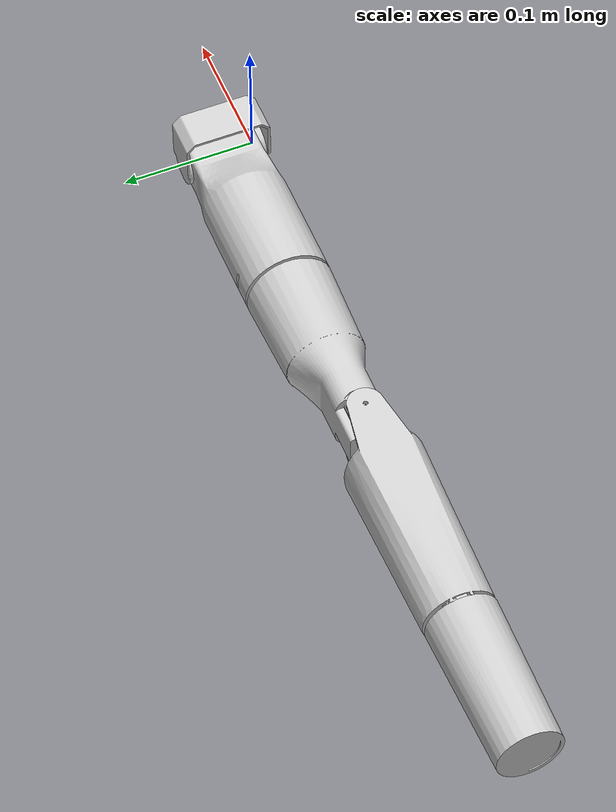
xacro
<?xml version="1.0"?>
   <robot xmlns:xacro="http://ros.org/wiki/xacro" name="left_hand">
   <xacro:property name="damping_value" value="20" />
  <xacro:property name="friction_value" value="0.01" />

     <link name="base_link">
       <visual>
          <geometry>
            <mesh filename="package://anya_v2/meshes/c5.dae" scale="0.001 0.001 0.001"/>
          </geometry>
          <origin xyz="0.0 0.0 0.0" rpy="0 0 0"/>
       </visual>
       <collision>
         <geometry>
            <mesh filename="package://anya_v2/meshes/c5.stl" scale="0.001 0.001 0.001"/>
         </geometry>
       </collision>
       <inertial>
         <mass value="0.016"/>
         <inertia ixx="0.0" ixy="0.0" ixz="0.0" iyy="0.0" iyz="0.0" izz="0.0"/>
       </inertial>
     </link>
     <link name="c4_link">
       <visual>
        <geometry>
          <mesh filename="package://anya_v2/meshes/c4.dae" scale="0.001 0.001 0.001"/>
        </geometry>
        <origin xyz="0.0 -0.005 0.0" rpy="0.0 0.0 0.0"/>
       </visual>
       <collision>
         <geometry>
            <mesh filename="package://anya_v2/meshes/c4.stl" scale="0.001 0.001 0.001"/>
         </geometry>
       </collision>
       <inertial>
         <mass value="0.237"/>
         <inertia ixx="0.0" ixy="0.0" ixz="0.0" iyy="0.0" iyz="0.0" izz="0.0"/>
       </inertial>
     </link>
     <joint name="first_joint" type="revolute">
       <parent link="base_link"/>
       <child link="c4_link"/>
       <axis xyz="0 1 0"/>
       <limit lower="-3.14159" upper="3.14159" velocity="50.0" effort="1000.0"/>
       <dynamics damping="${damping_value}" friction="${friction_value}"/>
       <origin xyz="0 -0.0 0" rpy="0 0 0"/>
     </joint>
      <link name="c3_link">
       <visual>
        <geometry>
          <mesh filename="package://anya_v2/meshes/c3.dae" scale="0.001 0.001 0.001"/>
        </geometry>
        <origin xyz="-0 0 0.0" rpy="0 0 0.0"/>
       </visual>
       <collision>
         <geometry>
            <mesh filename="package://anya_v2/meshes/c3.stl" scale="0.001 0.001 0.001"/>
         </geometry>
       </collision>
       <inertial>
         <mass value="0.131"/>
         <inertia ixx="0.0" ixy="0.0" ixz="0.0" iyy="0.0" iyz="0.0" izz="0.0"/>
       </inertial>
     </link>
     <joint name="second_joint" type="revolute">
       <parent link="c4_link"/>
       <child link="c3_link"/>
       <axis xyz="1 0 0"/>
       <limit lower="-3.14159" upper="3.14159" velocity="50.0" effort="1000.0"/>
       <origin xyz="-0.130 0.025 0.0" rpy="0 0 0"/>
     </joint>
     <link name="c2_link">
       <visual>
        <geometry>
          <mesh filename="package://anya_v2/meshes/c2.dae" scale="0.001 0.001 0.001"/>
        </geometry>
        <origin xyz="0 0 0.0" rpy="0 0 0.0"/>
       </visual>
       <collision>
         <geometry>
            <mesh filename="package://anya_v2/meshes/c2.stl" scale="0.001 0.001 0.001"/>
         </geometry>
       </collision>
       <inertial>
         <mass value="0.146"/>
         <inertia ixx="0.0" ixy="0.0" ixz="0.0" iyy="0.0" iyz="0.0" izz="0.0"/>
       </inertial>
     </link>
     <joint name="third_joint" type="revolute">
       <parent link="c3_link"/>
       <child link="c2_link"/>
       <axis xyz="0 0 1"/>
       <limit lower="-3.14159" upper="3.14159" velocity="50.0" effort="1000.0"/>
       <dynamics damping="${damping_value}" friction="${friction_value}"/>
       <origin xyz="-0.13950 -0.004 -0.02250" rpy="0 0 0"/>
     </joint>
     <link name="c1_link">
       <visual>
        <geometry>
          <mesh filename="package://anya_v2/meshes/c1.dae" scale="0.001 0.001 0.001"/>
        </geometry>
        <origin xyz="-0 0 0.0" rpy="0 0 0.0"/>
       </visual>
       <collision>
         <geometry>
            <mesh filename="package://anya_v2/meshes/c1.stl" scale="0.001 0.001 0.001"/>
         </geometry>
       </collision>
       <inertial>
         <mass value="0.083"/>
         <inertia ixx="0.0" ixy="0.0" ixz="0.0" iyy="0.0" iyz="0.0" izz="0.0"/>
       </inertial>
     </link>
     <joint name="4th_joint" type="revolute">
       <parent link="c2_link"/>
       <child link="c1_link"/>
       <axis xyz="1 0 0"/>
       <limit lower="-3.14159" upper="3.14159" velocity="50.0" effort="1000.0"/>
       <origin xyz="-0.17 0.0 0.02" rpy="0 0 0"/>
     </joint>
  </robot>
